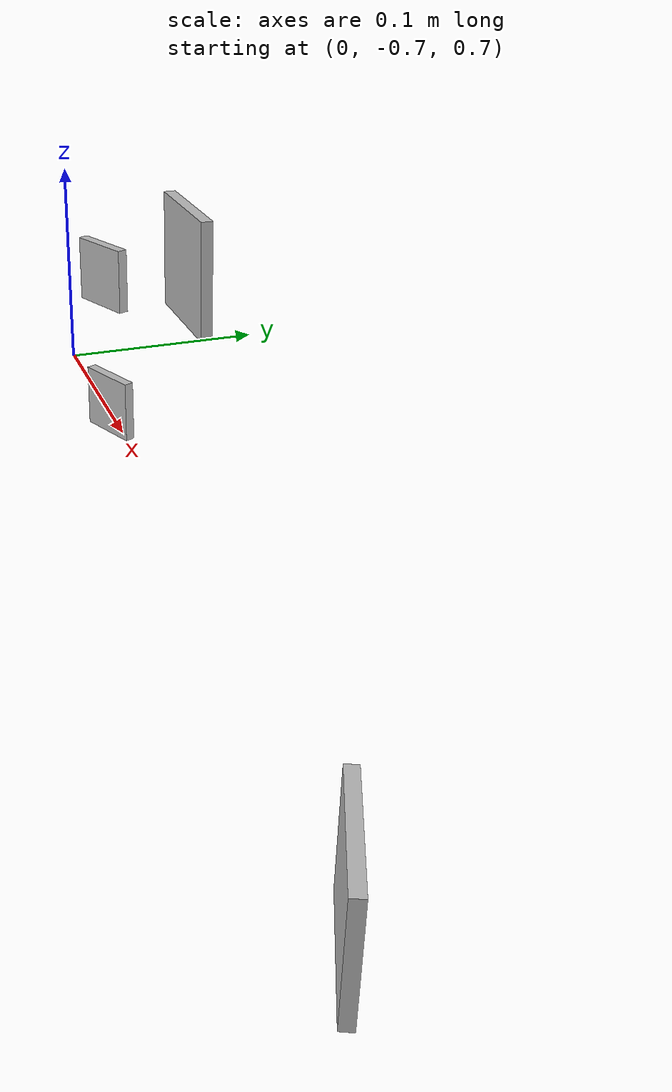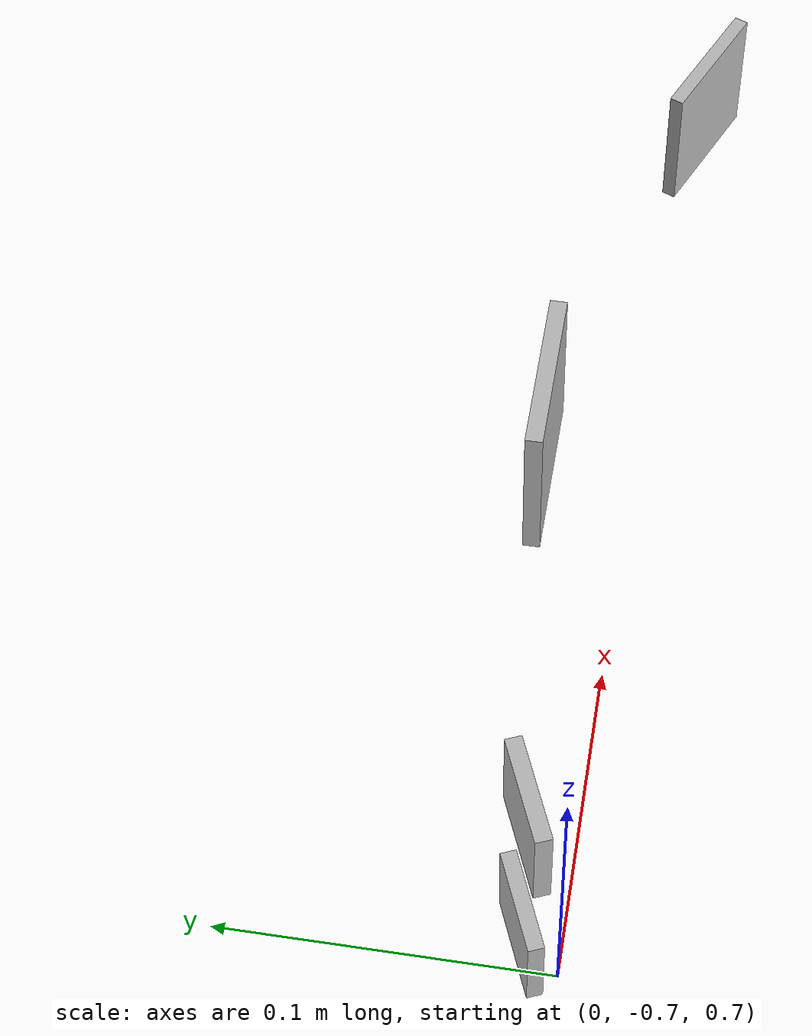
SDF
<?xml version="1.0" ?>
<!-- |    This document was autogenerated by xacro from /home/alpogant/ws_moveit/src/blender_gazebo/worlds/marsyard2021.world.xacro | -->
<!-- |    EDITING THIS FILE BY HAND IS NOT RECOMMENDED                                 | -->
<sdf version="1.6">
  <world name="marsyard2021">
    <!--
@author: Baran Berk Bağcı-->
    <!-- Empty world with artag, blue sky and clouds.-->
    <physics type="ode">
      <ode>
        <solver>
          <!-- IMPORTANT for skid steering to properly work -->
          <friction_model>cone_model</friction_model>
          <island_threads>6</island_threads>
        </solver>
      </ode>
    </physics>
    <light name="sun" type="directional">
      <pose frame="">0 0 100 0 0.8 0</pose>
      <diffuse>1 1 1 1</diffuse>
      <specular>0.1 0.1 0.1 1</specular>
      <cast_shadows>1</cast_shadows>
    </light>
    <scene>
      <ambient>0.6 0.6 0.6 1.0</ambient>
      <sky>
        <clouds>
          <speed>12</speed>
        </clouds>
      </sky>
      <shadows>true</shadows>
      <origin_visual>true</origin_visual>
    </scene>
    <include>
      <uri>model://ground_plane</uri>
    </include>

    <model name="landmark1">
      <pose>0.126983 -0.774248 0.327143 0 0 0</pose>
      <static>true</static>
      <link name="landmark">
        <visual name="sheet1">
          <pose>0 0.0975 0.45999999999999996 0 0 0</pose>
          <geometry>
            <box>
              <size>0.05 0.005 0.05</size>
            </box>
          </geometry>
          <material>
            <script>
              <name>ERC_Landmark/1</name>
            </script>
          </material>
        </visual>
      </link>
    </model>

    <model name="landmark2">
      <pose>0.328421 -0.796152 0.219961 0 0 -0.40229839258</pose>
      <static>true</static>
      <link name="landmark">
        <visual name="sheet1">
          <pose>0 0.0975 0.45999999999999996 0 0 0</pose>
          <geometry>
            <box>
              <size>0.05 0.005 0.05</size>
            </box>
          </geometry>
          <material>
            <script>
              <name>ERC_Landmark/2</name>
            </script>
          </material>
        </visual>
      </link>
    </model>

    <model name="landmark3">
      <pose>0.059741 -0.777232 0.291056 0 0 0.40229839258</pose>
      <static>true</static>
      <link name="landmark">
        <visual name="sheet1">
          <pose>0 0.0975 0.45999999999999996 0 0 0</pose>
          <geometry>
            <box>
              <size>0.032 0.005 0.032</size>
            </box>
          </geometry>
          <material>
            <script>
              <name>ERC_Landmark/3</name>
            </script>
          </material>
        </visual>
      </link>
    </model>

    <model name="landmark4">
      <pose>0.061614 -0.776123 0.220744 0 0 0.40229839258</pose>
      <static>true</static>
      <link name="landmark">
        <visual name="sheet1">
          <pose>0 0.0975 0.45999999999999996 0 0 0</pose>
          <geometry>
            <box>
              <size>0.032 0.005 0.032</size>
            </box>
          </geometry>
          <material>
            <script>
              <name>ERC_Landmark/4</name>
            </script>
          </material>
        </visual>
      </link>
    </model>

  </world>
</sdf>
